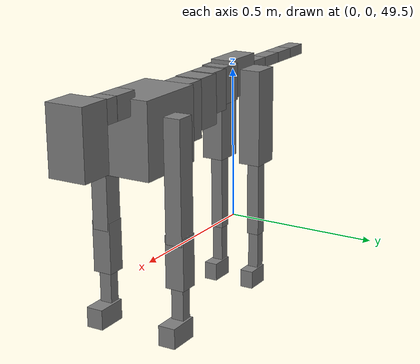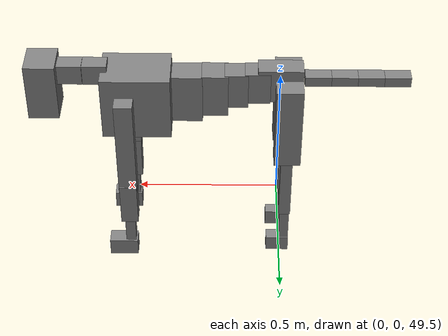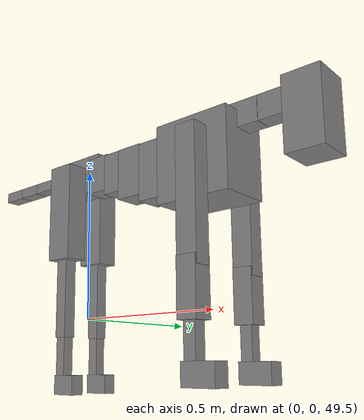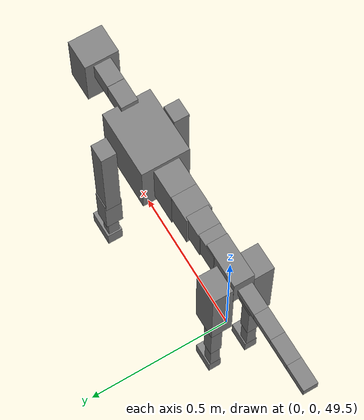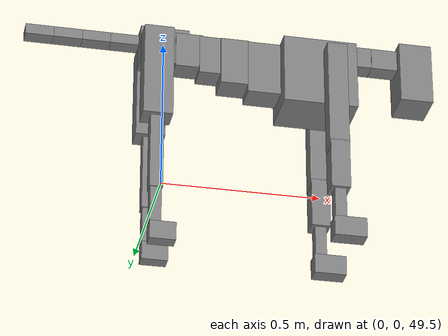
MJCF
<mujoco model="dog">

    <default>
        <joint armature="0.02" stiffness="1" damping="0.2" limited="true"/>
        <geom condim="3" friction="1 0.05 0.05" margin="0.01"/>
        <motor ctrllimited="true" ctrlrange="-1.0 1.0" forcelimited="true" gear="50"/>
    </default>

    <compiler inertiafromgeom="true" angle="radian"/>

    <option timestep="0.016" iterations="50" tolerance="1e-10" solver="Newton" jacobian="dense" cone="pyramidal"/>

    <size nconmax="20000" njmax="60000" nstack="5000000"/>
    <visual>
        <map force="0.1" zfar="30"/>
        <rgba haze="0.15 0.25 0.35 1"/>
        <quality shadowsize="2048"/>
        <global offwidth="800" offheight="800"/>
    </visual>

    <asset>
        <texture type="skybox" builtin="gradient" rgb1="0.3 0.5 0.7" rgb2="0 0 0" width="512" height="512"/>
        <texture name="texplane" type="2d" builtin="checker" rgb1=".2 .3 .4" rgb2=".1 0.15 0.2" width="512" height="512"
                 mark="cross" markrgb=".8 .8 .8"/>
        <texture name="texgeom" type="cube" builtin="flat" mark="cross" width="127" height="1278" rgb1="0.8 0.6 0.4"
                 rgb2="0.8 0.6 0.4" markrgb="1 1 1" random="0.01"/>

        <material name="matplane" reflectance="0.3" texture="texplane" texrepeat="1 1" texuniform="true"/>
        <material name="matgeom" texture="texgeom" texuniform="true" rgba="0.8 0.6 .4 1"/>
    </asset>

    <worldbody>
        <geom name="floor" pos="0 0 0" size="0 0 .25" type="plane" material="matplane" condim="3"/>

        <light directional="false" diffuse=".2 .2 .2" specular="0 0 0" pos="0 0 5" dir="0 0 -1" castshadow="false"/>
        <light mode="targetbodycom" target="torso" directional="false" diffuse=".8 .8 .8" specular="0.3 0.3 0.3"
               pos="0 0 4.0" dir="0 0 -1"/>

        <body name="root" pos="0 0 50">
            <freejoint name="root_1"/>
            <geom type="box" pos="0 0 -0.02" size="0.0774  0.0358  0.063" density="2030"/>

            <body name="spine1" pos="0.054 0 0">
                <joint name="spine1_y" axis="0 1 0" range="0 0.7" limited="true"/>
                <geom type="box" pos="0.02375 0 -0.03" size="0.04375  0.0375  0.05985" density="2030"/>

                <body name="spine2" pos="0.0612 0 0">
                    <joint name="spine2_y" axis="0 1 0" range="-0.15 0.15" limited="true"/>
                    <geom type="box" pos="0.03555  0  -0.04" size="0.04055  0.039  0.06615" density="2030"/>

                    <body name="spine3" pos="0.0730 0 0">
                        <joint name="spine3_y" axis="0 1 0" range="-0.15 0.15" limited="true"/>
                        <geom type="box" pos="0.03555  0  -0.057" size="0.04555  0.0445  0.081" density="2030"/>

                        <body name="spine4" pos="0.0780 0 0">
                            <joint name="spine4_y" axis="0 1 0" range="-0.15 0.15" limited="true"/>
                            <geom type="box" pos="0.05265  0  -0.07" size="0.05265  0.045  0.09135" density="2030"/>

                            <body name="torso" pos="0.1082 0 0">
                                <joint name="torso_y" axis="0 1 0" range="-0.15 0.15" limited="true"/>
                                <geom type="box" pos="0.11925  0  -0.085" size="0.11925  0.085  0.11745"
                                      density="2030"/>

                                <body name="neck1" pos="0.2160  0   0.0180">
                                    <joint name="neck1_y" axis="0 1 0" range="-1.2  -1" limited="true"/>
                                    <geom type="box" pos="0.0423  0  0" size="0.0423  0.03  0.036" density="2325"/>

                                    <body name="neck2" pos="0.0853  0  0">
                                        <joint name="neck2_y" axis="0 1 0" range="0.1  0" limited="true"/>
                                        <geom type="box" pos="0.0423  0  0" size="0.0423  0.03  0.036" density="2325"/>

                                        <body name="head" pos="0.0853  0  0">
                                            <joint name="head_y" axis="0 1 0" range="-0.3  -0.2" limited="true"/>
                                            <geom type="box" pos="0.0531  0  -0.055" size="0.0531  0.06  0.1044"
                                                  density="4030"/>

                                        </body>
                                    </body>
                                </body>

                                <body name="front_shoulder" pos="0.156  0   -0.0480">
                                    <joint name="front_shoulder_y" axis="0 1 0" range="-1 1.5" limited="true"/>
                                    <geom type="box" pos="0 0.13 -0.1627" size="0.0319  0.0273  0.1894" density="1158"/>
                                    <geom type="box" pos="0 -0.13 -0.1627" size="0.0319  0.0273  0.1894"
                                          density="1158"/>

                                    <body name="front_elbow" pos="0  0  -0.3254">
                                        <joint name="front_elbow_y" axis="0 1 0" range="-2 0" limited="true"/>
                                        <geom type="box" pos="0 0.13 -0.0821" size="0.0302  0.0309  0.0821"
                                              density="1081"/>
                                        <geom type="box" pos="0 -0.13 -0.0821" size="0.0302  0.0309  0.0821"
                                              density="1081"/>

                                        <body name="front_wrist" pos="0  0  -0.1643">
                                            <joint name="front_wrist_y" axis="0 1 0" range="-0.2 0" limited="true"/>
                                            <geom type="box" pos="0 0.13 -0.0575" size="0.0181  0.0201  0.0706"
                                                  density="1664"/>
                                            <geom type="box" pos="0 -0.13 -0.0575" size="0.0181  0.0201  0.0706"
                                                  density="1664"/>

                                            <body name="front_finger_end" pos="0  0  -0.1150">
                                                <joint name="front_finger_y" axis="0 1 0" range="-0.4 1"
                                                       limited="true"/>
                                                <geom type="box" pos="0.0277  0.13  -0.0172"
                                                      size="0.0507  0.0277  0.0322" density="1515"/>
                                                <geom type="box" pos="0.0277  -0.13  -0.0172"
                                                      size="0.0507  0.0277  0.0322" density="1515"/>

                                            </body>

                                        </body>
                                    </body>
                                </body>

                            </body>
                        </body>
                    </body>
                </body>
            </body>

            <body name="back_hip" pos="-0.03 0 -0.018">
                <joint name="back_hip_y" axis="0 1 0" range="-1.5 0.3" limited="true"/>
                <geom type="box" pos="0 0.07 -0.1348" size="0.0467  0.0366  0.1576" density="1154"/>
                <geom type="box" pos="0 -0.07 -0.1348" size="0.0467  0.0366  0.1576" density="1154"/>

                <body name="back_knee" pos="0  0  -0.2695">
                    <joint name="back_knee_y" axis="0 1 0" range="0 2.8" limited="true"/>
                    <geom type="box" pos="0 0.07 -0.1286" size="0.0208  0.0205  0.1441" density="1227"/>
                    <geom type="box" pos="0 -0.07 -0.1286" size="0.0208  0.0205  0.1441" density="1227"/>

                    <body name="back_ankle" pos="0  0  -0.2571">
                        <joint name="back_ankle_y" axis="0 1 0" range="-2.2 0" limited="true"/>
                        <geom type="box" pos="0 0.07 -0.0745" size="0.0176  0.0176  0.0858" density="1284"/>
                        <geom type="box" pos="0 -0.07 -0.0745" size="0.0176  0.0176  0.0858" density="1284"/>

                        <body name="back_toe_end" pos="0  0  -0.1491">
                            <joint name="back_toe_y" axis="0 1 0" range="-0.4 1" limited="true"/>
                            <geom type="box" pos="0.0224  0.07  -0.0149" size="0.0410  0.0224  0.0299" density="1515"/>
                            <geom type="box" pos="0.0224  -0.07  -0.0149" size="0.0410  0.0224  0.0299" density="1515"/>

                        </body>
                    </body>
                </body>
            </body>

            <body name="tail1" pos="-0.074 0 -0.006">
                <joint name="tail1_y" axis="0 1 0" range="-0.2 0.2" limited="true"/>
                <geom type="box" pos="-0.0536  0  0" size="0.045  0.025  0.0175" density="1587"/>

                <body name="tail2" pos="-0.09 0 0">
                    <joint name="tail2_y" axis="0 1 0" range="-0.2 0.2" limited="true"/>
                    <geom type="box" pos="-0.0536  0  0" size="0.045  0.025  0.0175" density="1587"/>

                    <body name="tail3" pos="-0.09 0 0">
                        <joint name="tail3_y" axis="0 1 0" range="-0.2 0.2" limited="true"/>
                        <geom type="box" pos="-0.0536  0  0" size="0.045  0.025  0.0175" density="1587"/>

                        <body name="tail4" pos="-0.09 0 0">
                            <joint name="tail4_y" axis="0 1 0" range="-0.2 0.2" limited="true"/>
                            <geom type="box" pos="-0.0536  0  0" size="0.045  0.025  0.0175" density="1587"/>

                        </body>
                    </body>
                </body>
            </body>
        </body>
    </worldbody>

    <actuator>
        <motor joint="spine1_y" forcerange="-150 150     "/>
        <motor joint="spine2_y" forcerange="-150 150     "/>
        <motor joint="spine3_y" forcerange="-150 150     "/>
        <motor joint="spine4_y" forcerange="-150 150     "/>
        <motor joint="torso_y" forcerange="-150 150     "/>
        <motor joint="neck1_y" forcerange="-100 100       "/>
        <motor joint="neck2_y" forcerange="-100 100       "/>
        <motor joint="head_y" forcerange="-150 150       "/>
        <motor joint="front_shoulder_y" forcerange="-104.79 176.88"/>
        <motor joint="front_elbow_y" forcerange="-145.22 179.27"/>
        <motor joint="front_wrist_y" forcerange="-54.52 106.53"/>
        <motor joint="front_finger_y" forcerange="-82.10 25.44"/>
        <motor joint="back_hip_y" forcerange="-314.93 373.00"/>
        <motor joint="back_knee_y" forcerange="-246.32 251.67"/>
        <motor joint="back_angle_y" forcerange="-116.36 64.50"/>
        <motor joint="back_toe_y" forcerange="-21.53 77.42"/>
        <motor joint="tail1_y" forcerange="-50 50     "/>
        <motor joint="tail2_y" forcerange="-50 50     "/>
        <motor joint="tail3_y" forcerange="-50 50     "/>
        <motor joint="tail4_y" forcerange="-50 50     "/>
    </actuator>
</mujoco>
